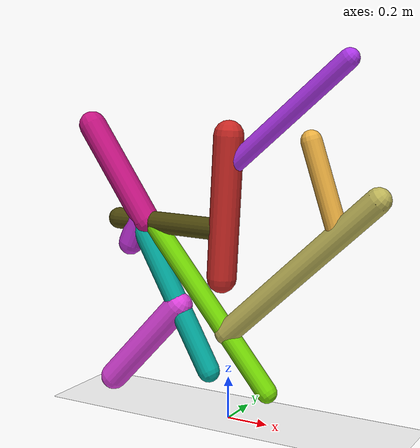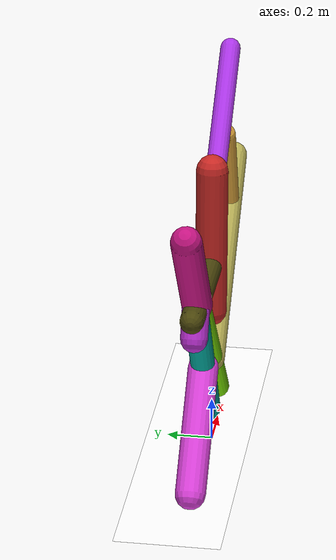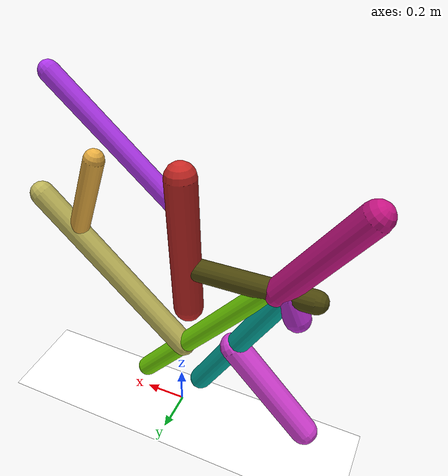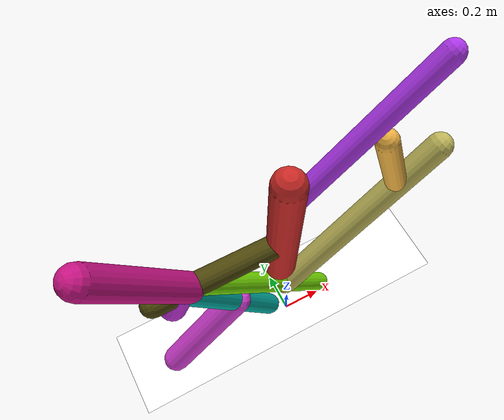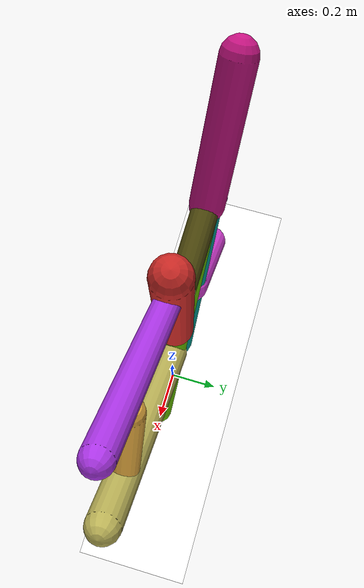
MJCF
<mujoco model="morphology">
  <option timestep="0.01"/>
  <default>
    <default class="/"/>
    <default class="0/"/>
    <default class="0/1/"/>
    <default class="0/1/2/"/>
    <default class="0/1/2/3/"/>
    <default class="0/1/2/3/4/"/>
    <default class="0/1/5/"/>
    <default class="0/1/6/"/>
    <default class="0/1/6/7/"/>
    <default class="0/1/6/7/8/"/>
    <default class="0/9/"/>
  </default>
  <asset>
    <texture name="texplane" type="2d" builtin="checker" rgb1="0.10000000000000001 0.20000000000000001 0.29999999999999999" rgb2="0.20000000000000001 0.29999999999999999 0.40000000000000002" width="300" height="300"/>
    <material name="MatPlane" class="/" texture="texplane" texrepeat="20 20" specular="1" shininess="1" reflectance="0.5"/>
  </asset>
  <worldbody>
    <light name="//unnamed_light_0" class="/" directional="true" pos="0 0 1.5" dir="0 0 -1.3" cutoff="100" exponent="1" diffuse="1 1 1" specular="0.10000000000000001 0.10000000000000001 0.10000000000000001"/>
    <geom name="ground" class="/" type="plane" size="15 15 0.5" material="MatPlane" rgba="1 1 1 1"/>
    <site name="body" class="/" size="9.9999999999999995e-07 9.9999999999999995e-07 9.9999999999999995e-07" pos="0 0 1.3294160127639771"/>
    <body pos="0 0 1.3294160127639771" name="0/">
      <joint name="0/rootx/" class="/" type="slide" axis="1 0 0" limited="false" stiffness="0" armature="0" damping="0"/>
      <joint name="0/rootz/" class="/" type="slide" axis="0 0 1" limited="false" stiffness="0" armature="0" damping="0"/>
      <joint name="0/rooty/" class="/" type="hinge" axis="0 1 0" limited="false" stiffness="0" armature="0" damping="0"/>
      <geom name="0/geom" class="0/" type="capsule" contype="1" conaffinity="1" condim="3" size="0.069955173904540008" rgba="0.79215442216436038 0.16214558608697704 0.14698127696332053 1" friction="0.59999999999999998 0.10000000000000001 0.10000000000000001" fromto="0 0 0 -0.037421476783082941 0 -0.65733028562164109"/>
      <site name="0/end0" class="0/" size="0.0050000000000000001" pos="-0.037421476783082941 0 -0.65733028562164109"/>
      <site name="0/attach1" class="0/" size="9.9999999999999995e-07 9.9999999999999995e-07 9.9999999999999995e-07" pos="-0.024583579403092689 0 -0.4318250550160655"/>
      <body pos="-0.024583579403092689 0 -0.4318250550160655" name="0/1/">
        <geom name="0/1/geom" class="0/1/" type="capsule" contype="1" conaffinity="1" condim="3" size="0.051700246111870948" rgba="0.29553765910822616 0.27430552496626059 0.047485205641314976 1" friction="0.59999999999999998 0.10000000000000001 0.10000000000000001" fromto="0 0 0 -0.58256015306706921 0 0.014301936568987816"/>
        <site name="0/1/end1" class="0/1/" size="0.0050000000000000001" pos="-0.58256015306706921 0 0.014301936568987816"/>
        <site name="0/1/attach2" class="0/1/" size="9.9999999999999995e-07 9.9999999999999995e-07 9.9999999999999995e-07" pos="-0.38779458108236986 0 0.0095204134220946788"/>
        <body pos="-0.38779458108236986 0 0.0095204134220946788" name="0/1/2/">
          <joint name="0/1/2/joint/" class="0/1/" type="hinge" axis="0 1 0" limited="true" range="-64.090186675833877 64.090186675833877"/>
          <geom name="0/1/2/geom" class="0/1/2/" type="capsule" contype="1" conaffinity="1" condim="3" size="0.049480826248689401" rgba="0.45498488107739998 0.8435834554803282 0.013411175849337598 1" friction="0.59999999999999998 0.10000000000000001 0.10000000000000001" fromto="0 0 0 0.61231903067170679 0 -0.7498432220917054"/>
          <site name="0/1/2/end2" class="0/1/2/" size="0.0050000000000000001" pos="0.61231903067170679 0 -0.7498432220917054"/>
          <site name="0/1/2/attach3" class="0/1/2/" size="9.9999999999999995e-07 9.9999999999999995e-07 9.9999999999999995e-07" pos="0.40285849726452699 0 -0.4933387637886682"/>
          <body pos="0.40285849726452699 0 -0.4933387637886682" name="0/1/2/3/">
            <geom name="0/1/2/3/geom" class="0/1/2/3/" type="capsule" contype="1" conaffinity="1" condim="3" size="0.057878201186978208" rgba="0.74237959060310732 0.7069562097518246 0.34566925228155299 1" friction="0.59999999999999998 0.10000000000000001 0.10000000000000001" fromto="0 0 0 0.71919629249914263 0 0.66647062143488167"/>
            <site name="0/1/2/3/end3" class="0/1/2/3/" size="0.0050000000000000001" pos="0.71919629249914263 0 0.66647062143488167"/>
            <site name="0/1/2/3/attach4" class="0/1/2/3/" size="9.9999999999999995e-07 9.9999999999999995e-07 9.9999999999999995e-07" pos="0.54415921728967986 0 0.50426585271503477"/>
            <body pos="0.54415921728967986 0 0.50426585271503477" name="0/1/2/3/4/">
              <joint name="0/1/2/3/4/joint/" class="0/1/2/3/" type="hinge" axis="0 1 0" limited="true" range="-41.754523537439923 41.754523537439923"/>
              <geom name="0/1/2/3/4/geom" class="0/1/2/3/4/" type="capsule" contype="1" conaffinity="1" condim="3" size="0.047321256962732171" rgba="0.92202155886063997 0.68834078197349136 0.25312461065709368 1" friction="0.59999999999999998 0.10000000000000001 0.10000000000000001" fromto="0 0 0 -0.13256924625031385 0 0.40157568643952612"/>
              <site name="0/1/2/3/4/end4" class="0/1/2/3/4/" size="0.0050000000000000001" pos="-0.13256924625031385 0 0.40157568643952612"/>
            </body>
          </body>
        </body>
        <site name="0/1/attach5" class="0/1/" size="9.9999999999999995e-07 9.9999999999999995e-07 9.9999999999999995e-07" pos="-0.4248263087339576 0 0.010429547727152556"/>
        <body pos="-0.4248263087339576 0 0.010429547727152556" name="0/1/5/">
          <joint name="0/1/5/joint/" class="0/1/" type="hinge" axis="0 1 0" limited="true" range="-44.949564677211328 44.949564677211328"/>
          <geom name="0/1/5/geom" class="0/1/5/" type="capsule" contype="1" conaffinity="1" condim="3" size="0.066233421799967232" rgba="0.78147151785443802 0.075549402192880977 0.5128999435778141 1" friction="0.59999999999999998 0.10000000000000001 0.10000000000000001" fromto="0 0 0 -0.30592371907532495 0 0.4498281415131915"/>
          <site name="0/1/5/end5" class="0/1/5/" size="0.0050000000000000001" pos="-0.30592371907532495 0 0.4498281415131915"/>
        </body>
        <site name="0/1/attach6" class="0/1/" size="9.9999999999999995e-07 9.9999999999999995e-07 9.9999999999999995e-07" pos="-0.46506096735037372 0 0.011417314453691117"/>
        <body pos="-0.46506096735037372 0 0.011417314453691117" name="0/1/6/">
          <joint name="0/1/6/joint/" class="0/1/" type="hinge" axis="0 1 0" limited="true" range="-45.203043711149242 45.203043711149242"/>
          <geom name="0/1/6/geom" class="0/1/6/" type="capsule" contype="1" conaffinity="1" condim="3" size="0.05938841646207433" rgba="0.7426527097220107 0.19066532429045313 0.83152590672820037 1" friction="0.59999999999999998 0.10000000000000001 0.10000000000000001" fromto="0 0 0 -0.052996816853668305 0 -0.11323215516017582"/>
          <site name="0/1/6/end6" class="0/1/6/" size="0.0050000000000000001" pos="-0.052996816853668305 0 -0.11323215516017582"/>
          <site name="0/1/6/attach7" class="0/1/6/" size="9.9999999999999995e-07 9.9999999999999995e-07 9.9999999999999995e-07" pos="-0.00021805532421379103 0 -0.00046589353419193872"/>
          <body pos="-0.00021805532421379103 0 -0.00046589353419193872" name="0/1/6/7/">
            <geom name="0/1/6/7/geom" class="0/1/6/7/" type="capsule" contype="1" conaffinity="1" condim="3" size="0.05354526271434884" rgba="0.0073429714514114952 0.66380090355657795 0.61766962175534612 1" friction="0.59999999999999998 0.10000000000000001 0.10000000000000001" fromto="0 0 0 0.38268702007594402 0 -0.69636667937069774"/>
            <site name="0/1/6/7/end7" class="0/1/6/7/" size="0.0050000000000000001" pos="0.38268702007594402 0 -0.69636667937069774"/>
            <site name="0/1/6/7/attach8" class="0/1/6/7/" size="9.9999999999999995e-07 9.9999999999999995e-07 9.9999999999999995e-07" pos="0.21800412081504444 0 -0.39669703370387144"/>
            <body pos="0.21800412081504444 0 -0.39669703370387144" name="0/1/6/7/8/">
              <joint name="0/1/6/7/8/joint/" class="0/1/6/7/" type="hinge" axis="0 1 0" limited="true" range="-68.012721966456397 68.012721966456397"/>
              <geom name="0/1/6/7/8/geom" class="0/1/6/7/8/" type="capsule" contype="1" conaffinity="1" condim="3" size="0.067009319901523354" rgba="0.87377508637203349 0.25949396157334403 0.8705894569451802 1" friction="0.59999999999999998 0.10000000000000001 0.10000000000000001" fromto="0 0 0 -0.38681592157835393 0 -0.41184533857499644"/>
              <site name="0/1/6/7/8/end8" class="0/1/6/7/8/" size="0.0050000000000000001" pos="-0.38681592157835393 0 -0.41184533857499644"/>
            </body>
          </body>
        </body>
      </body>
      <site name="0/attach9" class="0/" size="9.9999999999999995e-07 9.9999999999999995e-07 9.9999999999999995e-07" pos="-0.0089917969633098414 0 -0.15794621095275022"/>
      <body pos="-0.0089917969633098414 0 -0.15794621095275022" name="0/9/">
        <geom name="0/9/geom" class="0/9/" type="capsule" contype="1" conaffinity="1" condim="3" size="0.044672218528409122" rgba="0.68050366959521924 0.20757647097886223 0.91641693301542559 1" friction="0.59999999999999998 0.10000000000000001 0.10000000000000001" fromto="0 0 0 0.57619451816966238 0 0.49215343988071703"/>
        <site name="0/9/end9" class="0/9/" size="0.0050000000000000001" pos="0.57619451816966238 0 0.49215343988071703"/>
      </body>
      <camera name="0/side" class="0/" mode="trackcom" pos="0.40000000000000002 -4 0.20000000000000001" quat="0.70699999999999996 0.70699999999999996 0 0"/>
    </body>
  </worldbody>
  <actuator>
    <motor name="0/1/2/motor" class="0/1/2/" ctrllimited="true" ctrlrange="-1 1" gear="84" joint="0/1/2/joint/"/>
    <motor name="0/1/2/3/4/motor" class="0/1/2/3/4/" ctrllimited="true" ctrlrange="-1 1" gear="61" joint="0/1/2/3/4/joint/"/>
    <motor name="0/1/5/motor" class="0/1/5/" ctrllimited="true" ctrlrange="-1 1" gear="85" joint="0/1/5/joint/"/>
    <motor name="0/1/6/motor" class="0/1/6/" ctrllimited="true" ctrlrange="-1 1" gear="58" joint="0/1/6/joint/"/>
    <motor name="0/1/6/7/8/motor" class="0/1/6/7/8/" ctrllimited="true" ctrlrange="-1 1" gear="63" joint="0/1/6/7/8/joint/"/>
  </actuator>
  <sensor>
    <subtreelinvel name="velocity" body="0/"/>
  </sensor>
</mujoco>
